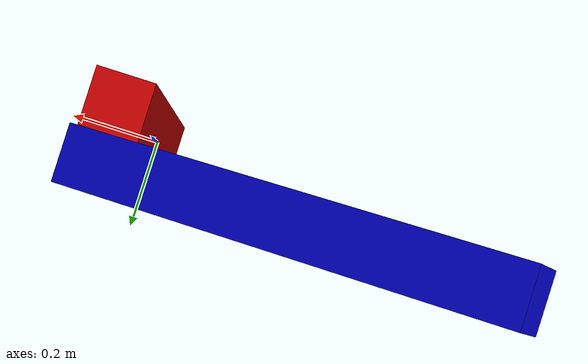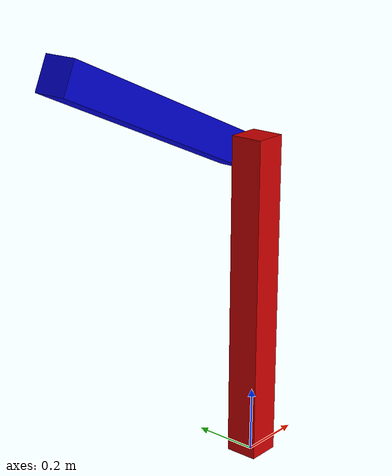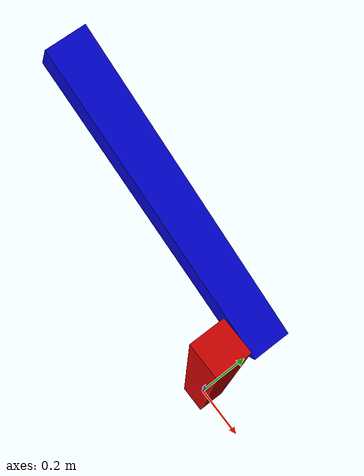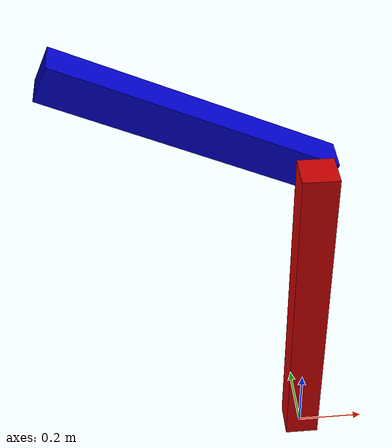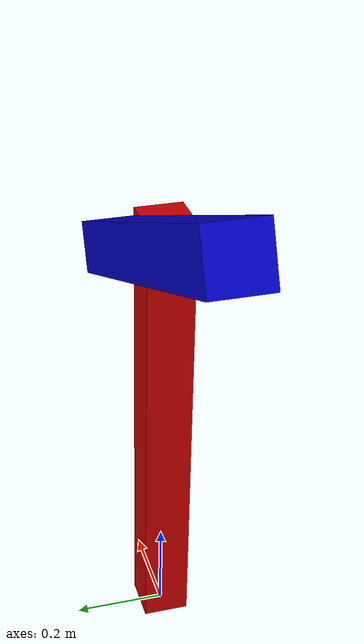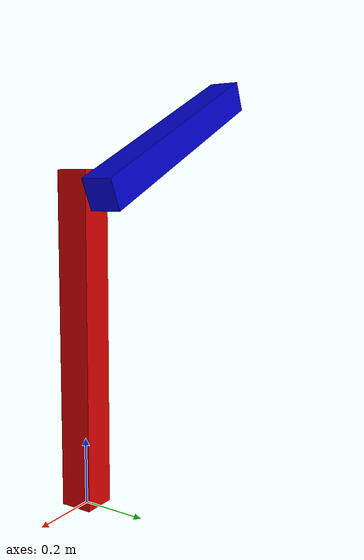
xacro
<?xml version="1.0"?>
<robot name="simple-robot" xmlns:xacro="http://ros.org/wiki/xacro">

  <material name="white">
    <color rgba="1 1 1 0.9"/>
  </material>

  <material name="blue">
    <color rgba="0 0 0.8 0.9"/>
  </material>

  <material name="red">
    <color rgba="0.8 0 0 0.9"/>
  </material>

  <xacro:macro name="inertial_for_box" params="width height depth mass">
    <inertial>
      <mass value="${mass}" />
      <inertia ixx="${(mass/12.0)*(height*height + depth*depth)}" ixy="0.0" ixz="0.0"
        iyy="${(mass/12.0)*(width*width + height*height)}" iyz="0.0"
        izz="${(mass/12.0)*(width*width + depth*depth)}" />
    </inertial>
  </xacro:macro>

  <link name="base_link">
    <collision>
      <geometry>
        <box size="1 1 0.0001"/>
      </geometry>
    </collision>
  </link>

  <link name="robot_base">
    <visual>
      <geometry>
        <box size="0.1 0.1 1.0"/>
      </geometry>
      <material name="red" />
    </visual>
    <collision>
      <geometry>
        <box size="0.1 0.1 1.0"/>
      </geometry>
    </collision>
    <xacro:inertial_for_box width="0.6" height="0.1" depth="0.2" mass="10" />
  </link>

  <link name="robot_arm">
    <visual>
      <geometry>
        <box size="0.1 0.1 0.8"/>
      </geometry>
      <origin rpy="0 0 0" xyz="0 0 -0.35"/>
      <material name="blue" />
    </visual>
    <collision>
      <geometry>
        <box size="0.1 0.1 0.8"/>
      </geometry>
      <origin rpy="0 0 0" xyz="0 0 -0.35"/>
    </collision>
    <xacro:inertial_for_box width="0.6" height="0.1" depth="0.2" mass="200" />
  </link>

  <joint name="robot_base_to_base_link" type="fixed">
    <parent link="base_link"/>
    <child link="robot_base"/>
    <origin rpy="0 0 0" xyz="0 0 0.5"/>
  </joint>

  <joint name="the_joint" type="revolute">
    <parent link="robot_base"/>
    <child link="robot_arm"/>
    <origin rpy="0 2 0" xyz="0 0.1 0.45"/>
    <axis rpy="0 0 0" xyz="0 1 0"/>
    <limit effort="10.0" lower="-3" upper="3" velocity="0.5"/>
    <dynamics damping="0.01" friction="0.0"/>
  </joint>

  <ros2_control name="IgnitionSystem" type="system">
    <hardware>
      <plugin>ign_ros2_control/IgnitionSystem</plugin>
    </hardware>
    <joint name="the_joint">
      <command_interface name="effort">
        <param name="min">-1000</param>
        <param name="max">1000</param>
      </command_interface>
      <state_interface name="position">
        <param name="initial_value">1.0</param>
      </state_interface>
      <state_interface name="velocity"/>
      <state_interface name="effort"/>
    </joint>
  </ros2_control>

  <gazebo>
    <plugin filename="libign_ros2_control-system.so" name="ign_ros2_control::IgnitionROS2ControlPlugin">
      <robot_param>robot_description</robot_param>
      <robot_param_node>robot_state_publisher</robot_param_node>
      <parameters>$(find ignition_ros2_control_test)/config/controller.yaml</parameters>
    </plugin>
  </gazebo>

</robot>
